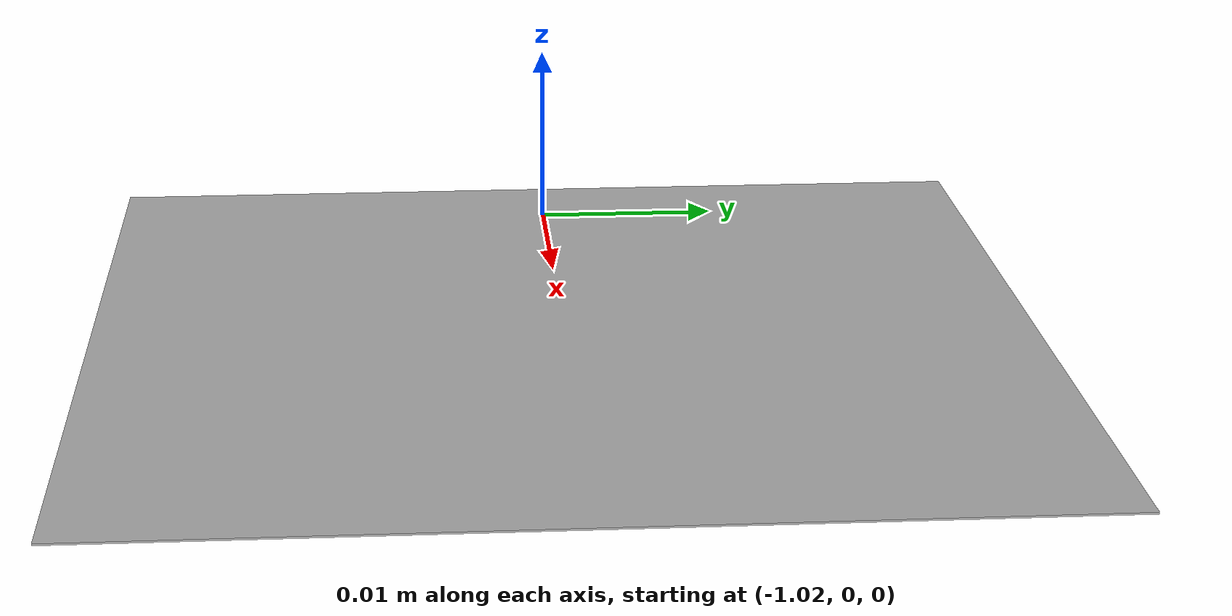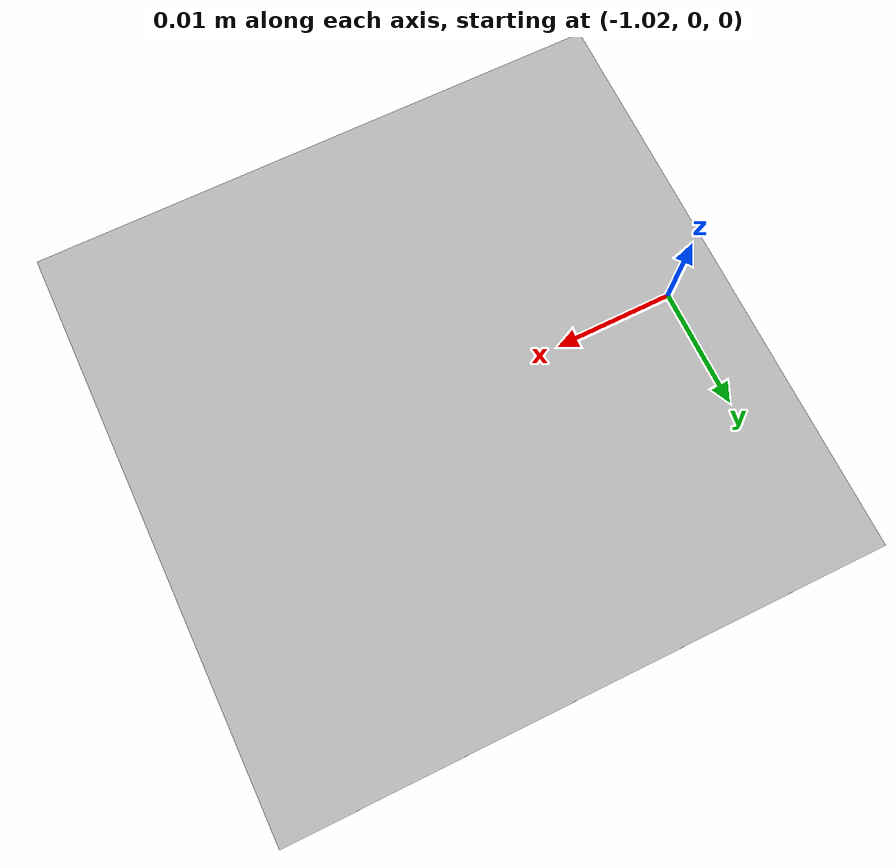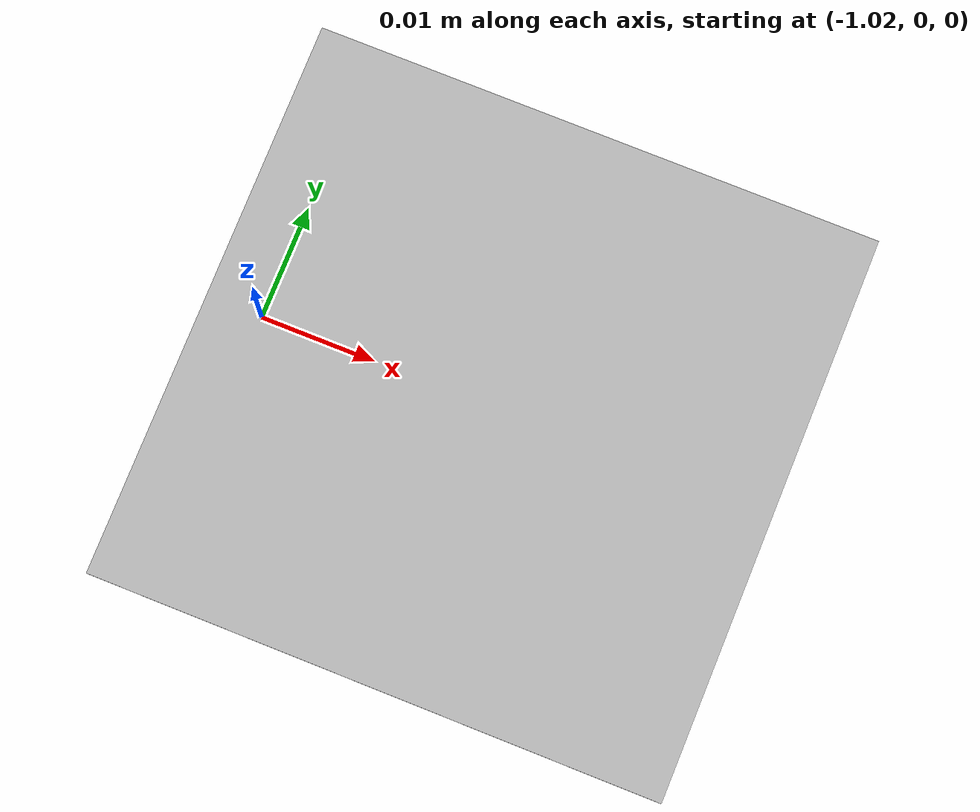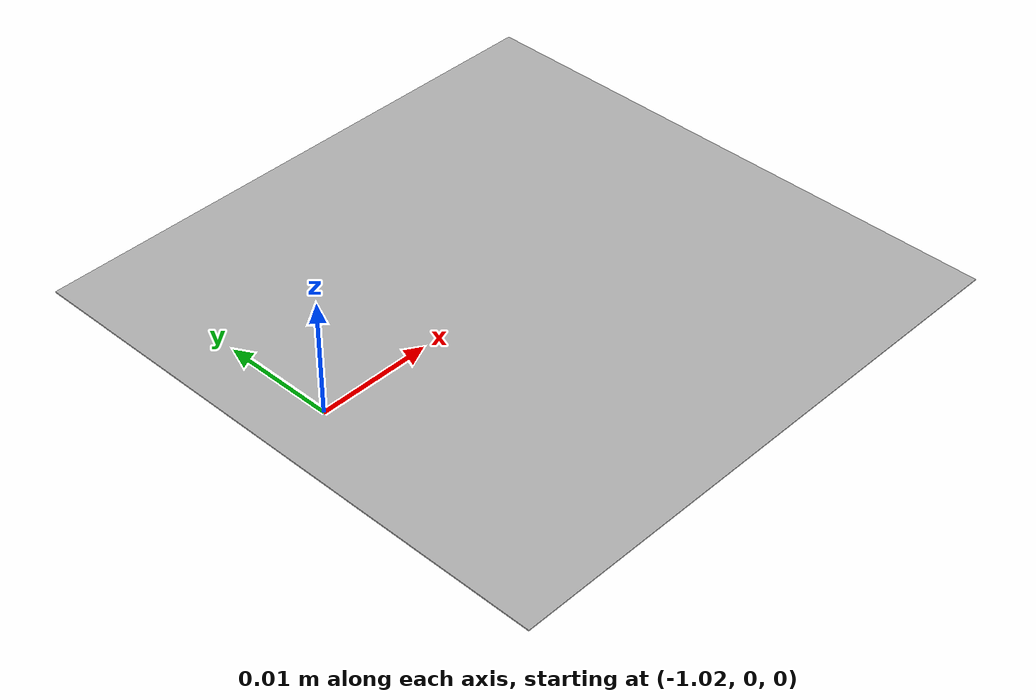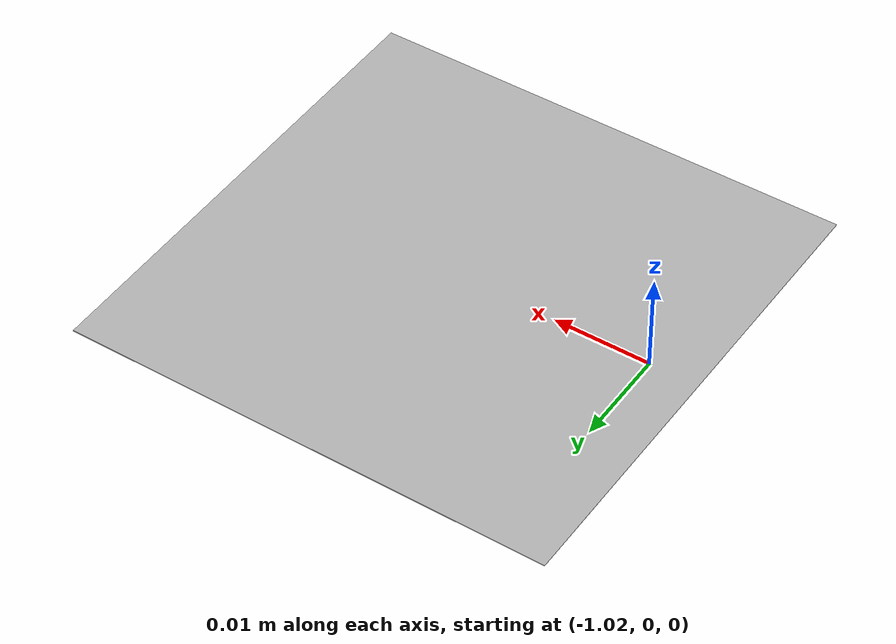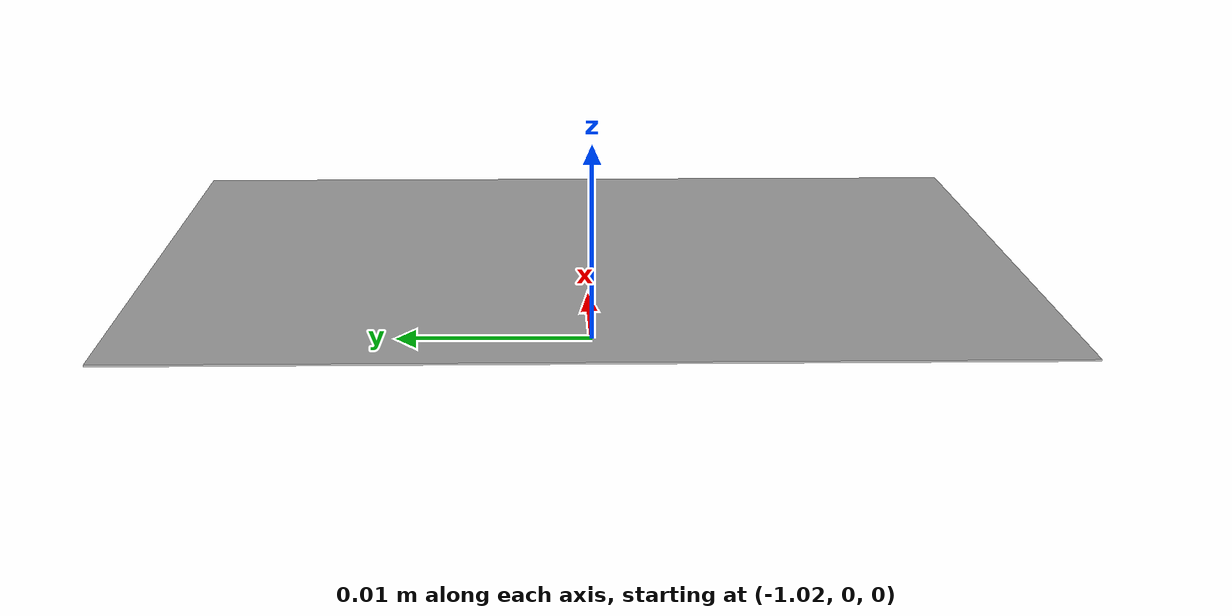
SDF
<?xml version="1.0" ?>
<sdf version="1.5">
  <model name="ar_tag_-1_0">
    <pose>-1.0 0 0 0 0 0</pose>
    <static>true</static>
    <link name="link">
      <collision name="collision">
        <geometry>
          <box>
            <size>0.05 0.05 .0001</size>
          </box>
        </geometry>
      </collision>
      <visual name="visual">
        <cast_shadows>false</cast_shadows>
        <geometry>
          <box>
            <size>0.05 0.05 .0001</size>
          </box>
        </geometry>
        <material>
          <script>
            <uri>model://ar_tag_-1_0/materials/scripts</uri>
            <uri>model://ar_tag_-1_0/materials/textures</uri>
            <name>ar_tag_-1_0</name>
          </script>
        </material>
      </visual>
    </link>
  </model>
</sdf>
